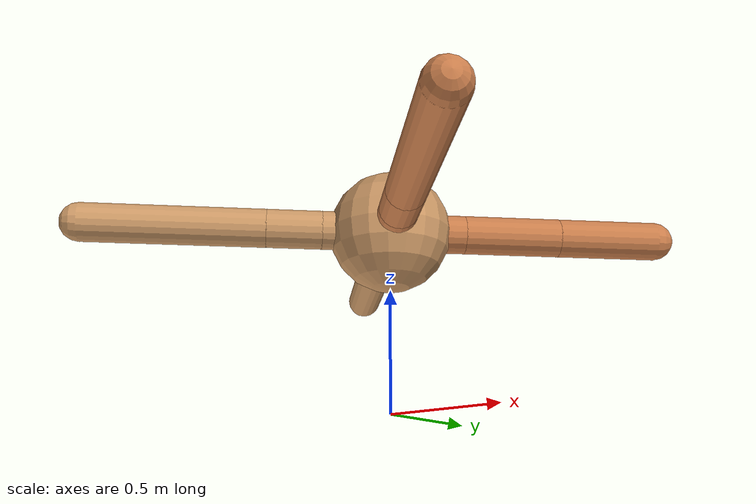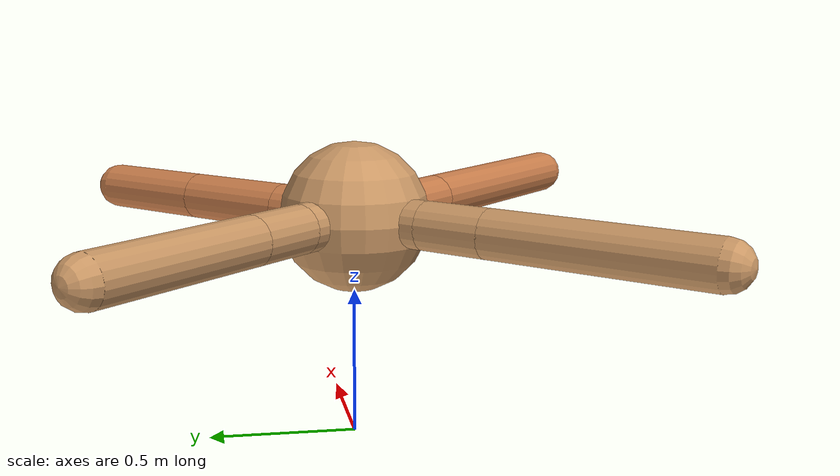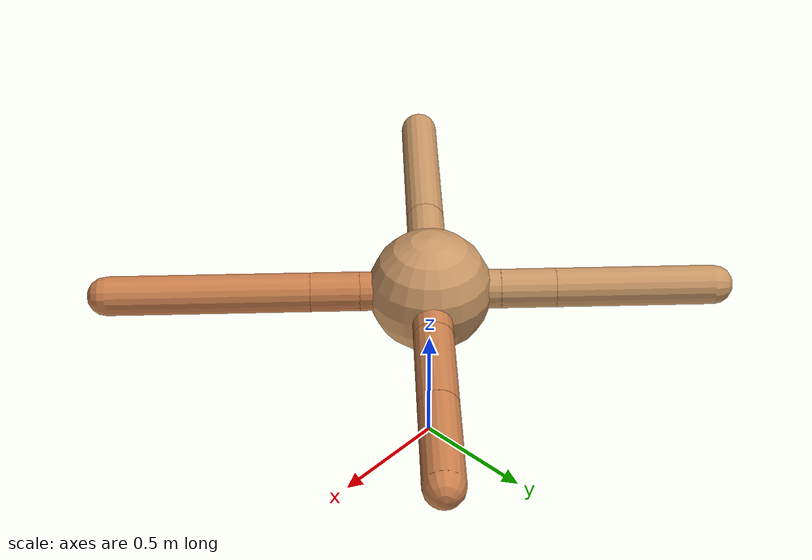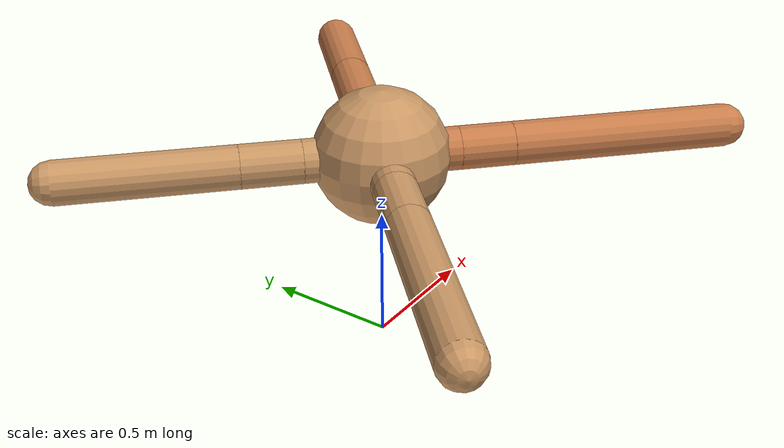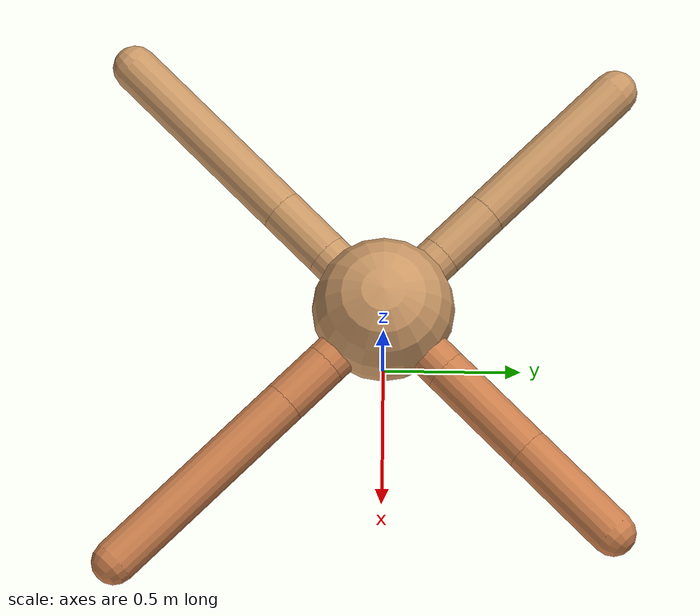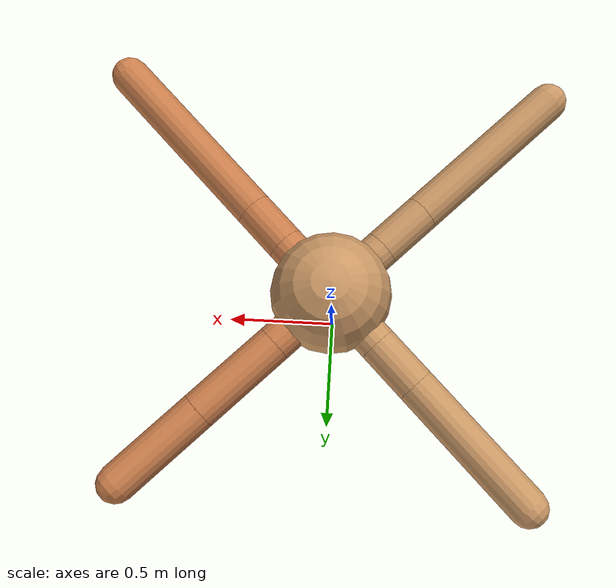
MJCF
<mujoco model="ant">
  <compiler angle="degree" coordinate="local" inertiafromgeom="true" />
  <option integrator="RK4" timestep="0.01" />
  <custom>
    <numeric data="0.0 0.0 0.55 1.0 0.0 0.0 0.0 0.0 1.0 0.0 -1.0 0.0 -1.0 0.0 1.0" name="init_qpos" />
  </custom>
  <default>
    <joint armature="1" damping="1" limited="true" />
    <geom conaffinity="0" condim="3" density="5.0" friction="1.5 0.1 0.1" margin="0.01" rgba="0.8 0.6 0.4 1" />
  </default>
  <worldbody>
    <body name="torso" pos="0 0 0.75">
      <geom name="torso_geom" pos="0 0 0" size="0.25" type="sphere" />

      <body name="front_left_leg" pos="0 0 0">
        <geom fromto="0.0 0.0 0.0 0.21880086823104716 0.21880086823104716 0.0" name="aux_1_geom" size="0.08" type="capsule" rgba=".8 .5 .3 1" />
        <body name="aux_1" pos="0.21880086823104716 0.21880086823104716 0.0">
          <joint axis="0 0 1" name="hip_1" pos="0.0 0.0 0.0" range="-40 40" type="hinge" />
          <geom fromto="0.0 0.0 0.0 0.2829857216819102 0.2829857216819102 0.0" name="left_leg_geom" size="0.08" type="capsule" rgba=".8 .5 .3 1" />
          <body pos="0.2829857216819102 0.2829857216819102 0.0" name="front_left_foot">
            <joint axis="-1 1 0" name="ankle_1" pos="0.0 0.0 0.0" range="30 100" type="hinge" />
            <geom fromto="0.0 0.0 0.0 0.29649080048369186 0.29649080048369186 0.0" name="left_ankle_geom" size="0.08" type="capsule" rgba=".8 .5 .3 1" />
          </body>
        </body>
      </body>
      <body name="front_right_leg" pos="0 0 0">
        <geom fromto="0.0 0.0 0.0 -0.2 0.2 0.0" name="aux_2_geom" size="0.08" type="capsule" />
        <body name="aux_2" pos="-0.2 0.2 0.0">
          <joint axis="0 0 1" name="hip_2" pos="0.0 0.0 0.0" range="-40 40" type="hinge" />
          <geom fromto="0.0 0.0 0.0 -0.15717776607770537 0.15717776607770537 0.0" name="right_leg_geom" size="0.08" type="capsule" />
          <body pos="-0.15717776607770537 0.15717776607770537 0.0" name="front_right_foot">
            <joint axis="1 1 0" name="ankle_2" pos="0.0 0.0 0.0" range="-100 -30" type="hinge" />
            <geom fromto="0.0 0.0 0.0 -0.4528951811977024 0.4528951811977024 0.0" name="right_ankle_geom" size="0.08" type="capsule" />
          </body>
        </body>
      </body>
      <body name="left_back_leg" pos="0 0 0">
        <geom fromto="0.0 0.0 0.0 -0.2 -0.2 0.0" name="aux_3_geom" size="0.08" type="capsule" />
        <body name="aux_3" pos="-0.2 -0.2 0.0">
          <joint axis="0 0 1" name="hip_3" pos="0.0 0.0 0.0" range="-40 40" type="hinge" />
          <geom fromto="0.0 0.0 0.0 -0.16086403265725607 -0.16086403265725607 0.0" name="back_leg_geom" size="0.08" type="capsule" />
          <body pos="-0.16086403265725607 -0.16086403265725607 0.0" name="left_back_foot">
            <joint axis="-1 1 0" name="ankle_3" pos="0.0 0.0 0.0" range="-100 -30" type="hinge" />
            <geom fromto="0.0 0.0 0.0 -0.5256451477803703 -0.5256451477803703 0.0" name="third_ankle_geom" size="0.08" type="capsule" />
          </body>
        </body>
      </body>
      <body name="right_back_leg" pos="0 0 0">
        <geom fromto="0.0 0.0 0.0 0.2 -0.2 0.0" name="aux_4_geom" size="0.08" type="capsule" rgba=".8 .5 .3 1" />
        <body name="aux_4" pos="0.2 -0.2 0.0">
          <joint axis="0 0 1" name="hip_4" pos="0.0 0.0 0.0" range="-40 40" type="hinge" />
          <geom fromto="0.0 0.0 0.0 0.14027715610567854 -0.14027715610567854 0.0" name="rightback_leg_geom" size="0.08" type="capsule" rgba=".8 .5 .3 1" />
          <body pos="0.14027715610567854 -0.14027715610567854 0.0" name="right_back_foot">
            <joint axis="1 1 0" name="ankle_4" pos="0.0 0.0 0.0" range="30 100" type="hinge" />
            <geom fromto="0.0 0.0 0.0 0.5760564696884732 -0.5760564696884732 0.0" name="fourth_ankle_geom" size="0.08" type="capsule" rgba=".8 .5 .3 1" />
          </body>
        </body>
      </body>
    </body>
  </worldbody>
  <actuator>
    <motor ctrllimited="true" ctrlrange="-1.0 1.0" joint="hip_4" gear="150" />
    <motor ctrllimited="true" ctrlrange="-1.0 1.0" joint="ankle_4" gear="150" />
    <motor ctrllimited="true" ctrlrange="-1.0 1.0" joint="hip_1" gear="150" />
    <motor ctrllimited="true" ctrlrange="-1.0 1.0" joint="ankle_1" gear="150" />
    <motor ctrllimited="true" ctrlrange="-1.0 1.0" joint="hip_2" gear="150" />
    <motor ctrllimited="true" ctrlrange="-1.0 1.0" joint="ankle_2" gear="150" />
    <motor ctrllimited="true" ctrlrange="-1.0 1.0" joint="hip_3" gear="150" />
    <motor ctrllimited="true" ctrlrange="-1.0 1.0" joint="ankle_3" gear="150" />
  </actuator>
</mujoco>
